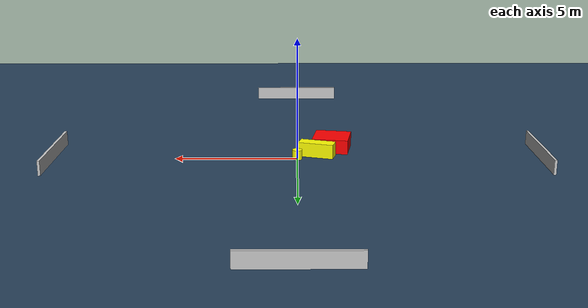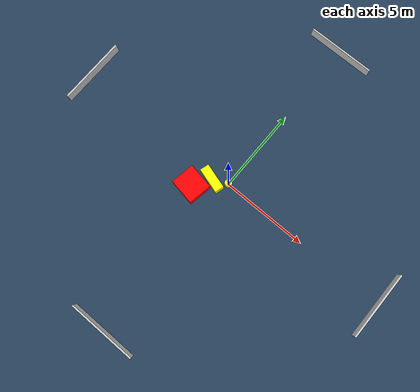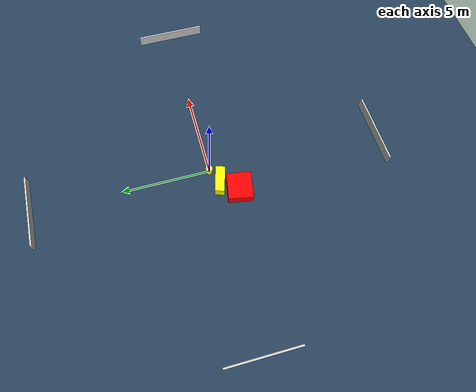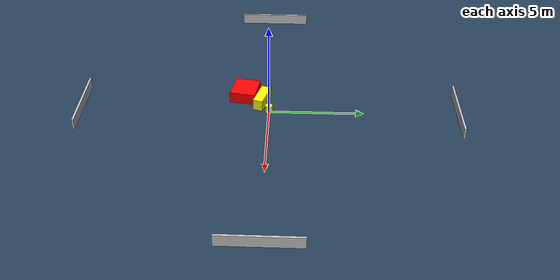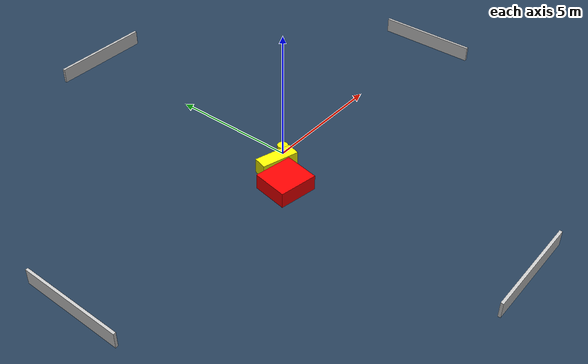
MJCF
<?xml version="1.0" ?>
<mujoco model="generated_environment">
  <option timestep="0.01" integrator="RK4" cone="elliptic"/>
  <default>
    <geom density="1"/>
  </default>
  <asset>
    <texture builtin="gradient" height="3072" name="skybox" rgb1="0.3 0.5 0.7" rgb2="0 0 0" type="skybox" width="512"/>
    <texture builtin="checker" height="300" name="groundplane" rgb1="0.2 0.3 0.4" rgb2="0.1 0.2 0.3" type="2d" width="300"/>
    <material name="groundplane" reflectance="0.2" texrepeat="5 5" texture="groundplane"/>
  </asset>
  <worldbody>
    <light dir="0 0 -1" directional="true" pos="0 0 1.5"/>
    <geom condim="3" friction="0.5 0.005 0.001" material="groundplane" name="floor" pos="0 0 0" size="0 0 0.05" type="plane"/>
    <body name="walls">
      <geom name="wall_1" condim="4" pos="-10.0 0.0 0.3" rgba="0.800000011920929 0.800000011920929 0.800000011920929 1.0" size="0.05 2.0 0.3" type="box"/>
      <geom name="wall_2" condim="4" pos="10.0 0.0 0.3" rgba="0.800000011920929 0.800000011920929 0.800000011920929 1.0" size="0.05 2.0 0.3" type="box"/>
      <geom name="wall_3" condim="4" pos="0.0 -10.0 0.3" rgba="0.800000011920929 0.800000011920929 0.800000011920929 1.0" size="2.0 0.05 0.3" type="box"/>
      <geom name="wall_4" condim="4" pos="0.0 10.0 0.3" rgba="0.800000011920929 0.800000011920929 0.800000011920929 1.0" size="2.0 0.05 0.3" type="box"/>
    </body>
    <body name="robot">
      <joint name="joint_x" type="slide" pos="0 0 0" axis="1 0 0"/>
      <joint name="joint_y" type="slide" pos="0 0 0" axis="0 1 0"/>
      <geom name="robot" type="cylinder" pos="0.0 0.0 0.2" size="0.2 0.2 0.0" mass="5.0" friction="1.0 0.005 0.0001" condim="4" rgba="1.0 1.0 0.0 1.0"/>
    </body>
    <body name="obstacle_1_movable">
      <geom name="obstacle_1_movable" condim="4" pos="-0.8233965635242124 -0.39773897396023855 0.3" euler="0 0 343.66900982683165" friction="0.0 0.005 0.001" rgba="1.0 1.0 0.0 1.0" size="0.7351121108366969 0.26408351730889296 0.3" type="box" mass="0.1"/>
      <joint type="free"/>
    </body>
    <body name="obstacle_2_static">
      <geom name="obstacle_2_static" condim="4" pos="-1.475062516105411 -1.341863229119776 0.3" euler="0 0 170.25791806559639" friction="0.0 0.005 0.001" rgba="1.0 0.0 0.0 1.0" size="0.7546364241317411 0.689530843546398 0.3" type="box"/>
    </body>
  </worldbody>
  <actuator>
    <motor name="actuator_x" joint="joint_x" gear="1" ctrlrange="-1 1"/>
    <motor name="actuator_y" joint="joint_y" gear="1" ctrlrange="-1 1"/>
  </actuator>
</mujoco>
